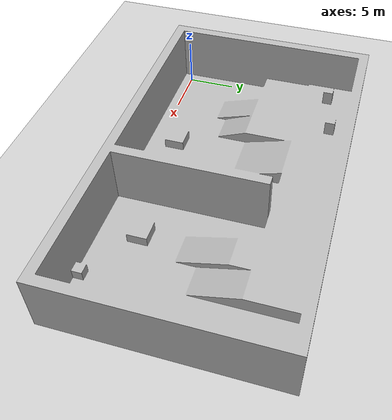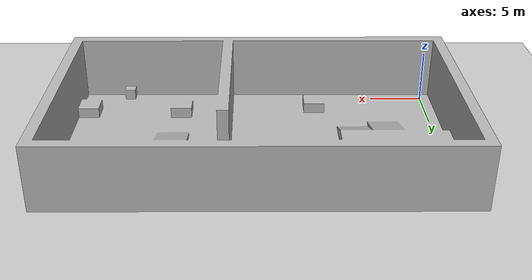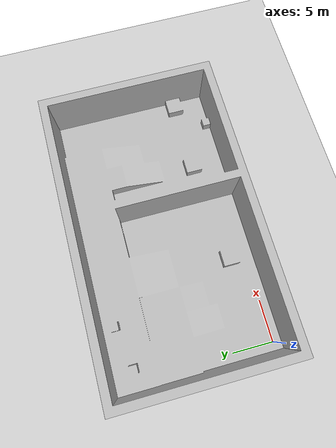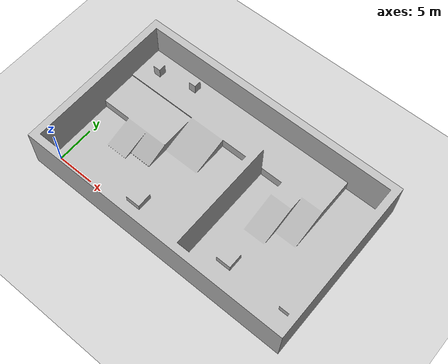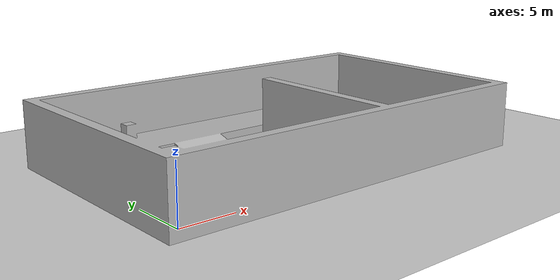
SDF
<?xml version="1.0" ?>
<sdf version="1.6">
    <world name="default">

        <include>
            <uri>model://ground_plane</uri>
        </include>

        <include>
            <uri>model://sun</uri>
        </include>

        <include>
            <name>testworld</name>
            <uri>model://testworld</uri>
            <static>true</static>
            <pose>-1 -1 0.01 0 0 0</pose>
        </include>
    </world>
</sdf>

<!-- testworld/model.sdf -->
<sdf version="1.6">
  <model name="TESTWORLD">
    <static>true</static>
    <link name="link">
      <collision name="collision">
        <geometry>
          <mesh>
            <scale>0.001 0.001 0.001</scale>
            <uri>model://testworld/meshes/world.dae</uri>
          </mesh>
        </geometry>
      </collision>
      <visual name="visual">
        <geometry>
          <mesh>
            <scale>0.001 0.001 0.001</scale>
            <uri>model://testworld/meshes/world.dae</uri>
          </mesh>
        </geometry>
      </visual>
    </link>
  </model>
</sdf>
